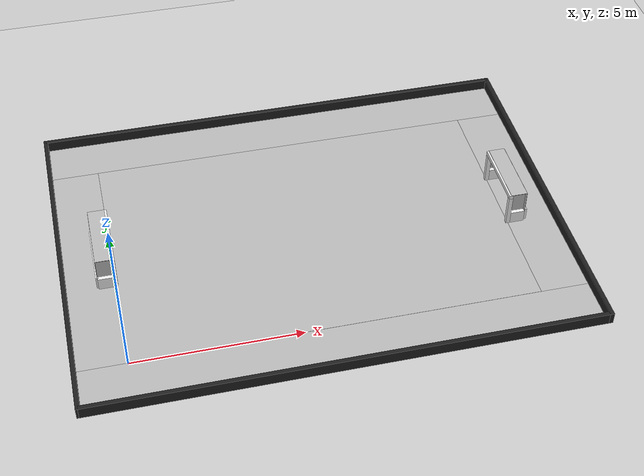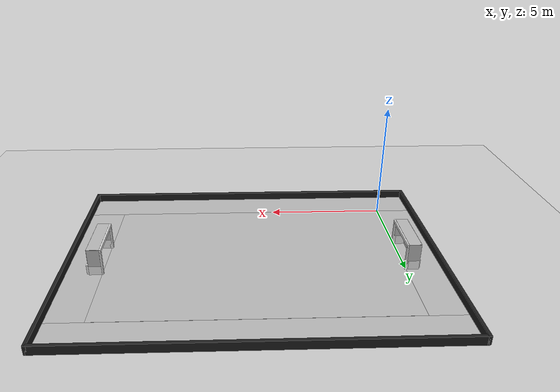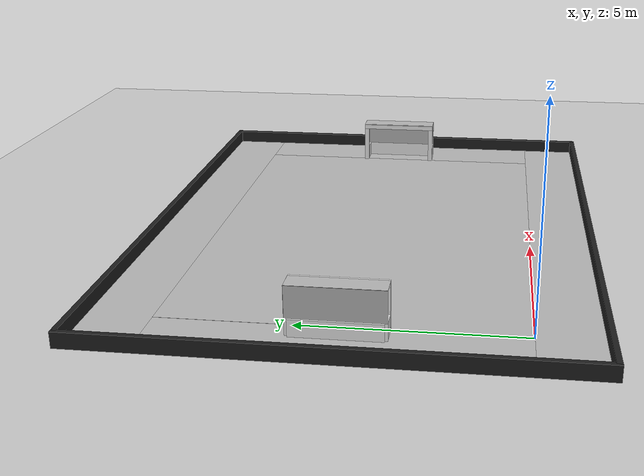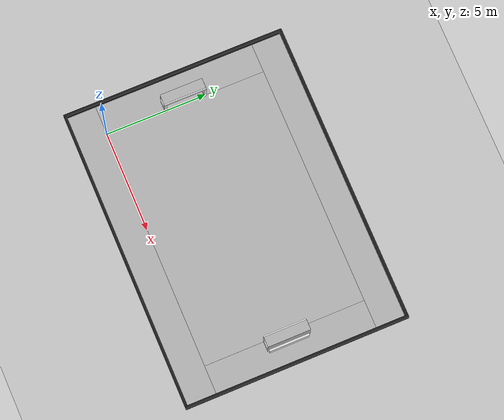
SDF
<?xml version="1.0"?>
<sdf version="1.4">
  <world name="KRI_Nasional">
    <!-- Scene -->
    <scene>
      <ambient>0.4 0.4 0.4 1</ambient>
      <background>0.7 0.7 0.7 1</background>
      <shadows>0</shadows>
    </scene>

    <!-- spherical_coordinates -->
    <spherical_coordinates>
      <surface_model>EARTH_WGS84</surface_model>
      <latitude_deg>0</latitude_deg>
      <longitude_deg>0</longitude_deg>
      <elevation>0</elevation>
      <heading_deg>0</heading_deg>
    </spherical_coordinates>

    <!-- gui -->
    <gui fullscreen='0'>
      <camera name='user_camera'>
        <pose>0 -16 10 0 0.53 1.57</pose>
        <view_controller>orbit</view_controller>
      </camera>
    </gui>

    <!-- Ground Plane -->
    <include>
      <uri>model://ground_plane</uri>
    </include>

    <!-- lighting -->
    <include>
      <uri>model://sun</uri>
    </include>

    <!-- physics -->
    <physics type="ode">
      <ode>
        <constraints>
          <contact_max_correcting_vel>0.1</contact_max_correcting_vel>
          <contact_surface_layer>0.0001</contact_surface_layer>
        </constraints>
      </ode>
      <max_step_size>0.004</max_step_size>
      <real_time_update_rate>100</real_time_update_rate>
      <gravity>0.0 0.0 -9.81</gravity>
    </physics>

    <!-- Lapangan Nasional -->
    <include>
      <uri>model://KRI_Nasional</uri>
    </include>

    <plugin name="referee" filename="libreferee.so" />

  </world>
</sdf>

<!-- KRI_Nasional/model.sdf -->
<sdf version="1.6">
  <model name="KRI">
    <static>true</static>

    <link name="chassis">
      <pose>6 4 0.01 0 0 0</pose>
      <collision name="collision">
        <geometry>
          <plane>
            <normal>0 0 1</normal>
            <size>12 8</size>
          </plane>
        </geometry>
        <surface>
          <friction>
            <ode>
              <mu>100</mu>
              <mu2>50</mu2>
            </ode>
          </friction>
        </surface>
      </collision>

      <visual name="carpet">

        <geometry>
          <plane>
            <normal>0 0 1</normal>
            <size>12 8</size>
          </plane>
        </geometry>
        <material>
          <script>
            <uri>model://KRI_Nasional/materials/scripts/</uri>
            <uri>model://KRI_Nasional/materials/textures/</uri>
            <name>KRI/Carpet</name>
          </script>
        </material>
      </visual>

      <visual name="base1">
        <pose>0 4.75 0 0 0 0</pose>
        <cast_shadows>false</cast_shadows>
        <geometry>
          <plane>
            <normal>0 0 1</normal>
            <size>15.0 1.5</size>
          </plane>
        </geometry>
        <material>
          <script>
            <uri>file://KRI_Nasional/materials/scripts/</uri>
            <uri>file://KRI_Nasional/materials/textures/</uri>
            <name>KRI/FieldBorder</name>
          </script>
        </material>
      </visual>

      <visual name="base2">
        <pose>0 -4.75 0 0 0 0</pose>
        <cast_shadows>true</cast_shadows>
        <geometry>
          <plane>
            <normal>0 0 1</normal>
            <size>15.0 1.5</size>
          </plane>
        </geometry>
        <material>
          <script>
            <uri>file://KRI_Nasional/materials/scripts/</uri>
            <uri>file://KRI_Nasional/materials/textures/</uri>
            <name>KRI/FieldBorder</name>
          </script>
        </material>
      </visual>

      <visual name="base3">
        <pose>6.75 0 0 0 0 0</pose>
        <cast_shadows>false</cast_shadows>
        <geometry>
          <plane>
            <normal>0 0 1</normal>
            <size>1.5 8.0</size>
          </plane>
        </geometry>
        <material>
          <script>
            <uri>file://KRI_Nasional/materials/scripts/</uri>
            <uri>file://KRI_Nasional/materials/textures/</uri>
            <name>KRI/FieldBorder</name>
          </script>
        </material>
      </visual>
      <visual name="base4">
        <pose>-6.75 0 0 0 0 0</pose>
        <cast_shadows>false</cast_shadows>
        <geometry>
          <plane>
            <normal>0 0 1</normal>
            <size>1.5 8.0</size>
          </plane>
        </geometry>
        <material>
          <script>
            <uri>file://KRI_Nasional/materials/scripts/</uri>
            <uri>file://KRI_Nasional/materials/textures/</uri>
            <name>KRI/FieldBorder</name>
          </script>
        </material>
      </visual>
    </link>

    <!--GAWAAAAAAAAAAAAAAAAAAAAAAAAAAAAAAAAAAAAAAAAAAAAAAAAAAAAAAAAAAAAAAAAAAAAAAAAAAAANG-->

    <link name="left_post">
      <pose>0 5 0.5 0 0 0</pose>
      <collision name="collision">
        <geometry>
          <box>
            <size>0.125 0.125 1.0</size>
          </box>
        </geometry>
      </collision>
      <visual name="visual">
        <geometry>
          <box>
            <size>0.125 0.125 1.0</size>
          </box>
        </geometry>
        <material>
          <script>
            <uri>file://media/materials/scripts/gazebo.material</uri>
            <name>Gazebo/White</name>
          </script>
        </material>
      </visual>
    </link>

    <link name="right_post">
      <pose>0 3 0.5 0 0 0</pose>
      <collision name="collision">
        <geometry>
          <box>
            <size>0.125 0.125 1.0</size>
          </box>
        </geometry>
      </collision>
      <visual name="visual">
        <geometry>
          <box>
            <size>0.125 0.125 1.0</size>
          </box>
        </geometry>
        <material>
          <script>
            <uri>file://media/materials/scripts/gazebo.material</uri>
            <name>Gazebo/White</name>
          </script>
        </material>
      </visual>
    </link>

    <link name="crossbar">
      <pose>0 4 1.0625 0 0 0</pose>
      <collision name="collision">
        <geometry>
          <box>
            <size>0.125 2.125 0.125</size>
          </box>
        </geometry>
      </collision>
      <visual name="visual">
        <geometry>
          <box>
            <size>0.125 2.125 0.125</size>
          </box>
        </geometry>
        <material>
          <script>
            <uri>file://media/materials/scripts/gazebo.material</uri>
            <name>Gazebo/White</name>
          </script>
        </material>
      </visual>
    </link>

    <link name="left_support_horiz_lower">
      <pose>-0.25 5 0.2 0 0 0</pose>
      <collision name="collision">
        <geometry>
          <box>
            <size>0.5 0.125 0.4</size>
          </box>
        </geometry>
      </collision>
      <visual name="visual">
        <geometry>
          <box>
            <size>0.5 0.125 0.4</size>
          </box>
        </geometry>
        <material>
          <script>
            <uri>file://media/materials/scripts/gazebo.material</uri>
            <name>Gazebo/White</name>
          </script>
        </material>
      </visual>
    </link>

    <link name="right_support_horiz_lower">
      <pose>-0.25 3 0.2 0 0 0</pose>
      <collision name="collision">
        <geometry>
          <box>
            <size>0.5 0.125 0.4</size>
          </box>
        </geometry>
      </collision>
      <visual name="visual">
        <geometry>
          <box>
            <size>0.5 0.125 0.4</size>
          </box>
        </geometry>
        <material>
          <script>
            <uri>file://media/materials/scripts/gazebo.material</uri>
            <name>Gazebo/White</name>
          </script>
        </material>
      </visual>
    </link>

    <link name="center_support_horiz_lower">
      <pose>-0.5 4 0.2 0 0 0</pose>
      <collision name="collision">
        <geometry>
          <box>
            <size>0.10 2 0.4</size>
          </box>
        </geometry>
      </collision>
      <visual name="visual">
        <geometry>
          <box>
            <size>0.10 2 0.4</size>
          </box>
        </geometry>
        <material>
          <script>
            <uri>file://media/materials/scripts/gazebo.material</uri>
            <name>Gazebo/White</name>
          </script>
        </material>
      </visual>
    </link>

    <link name="center_net">
      <pose>-0.5 4 0.7625 0 0 0</pose>
      <collision name="collision">
        <geometry>
          <box>
            <size>0.01 2.125 0.725</size>
          </box>
        </geometry>
      </collision>
      <visual name="visual">
        <geometry>
          <box>
            <size>0.01 2.125 0.725</size>
          </box>
        </geometry>
        <material>
          <script>
            <uri>file://KRI_Nasional/materials/scripts/</uri>
            <uri>file://KRI_Nasional/materials/textures/</uri>
            <name>KRI/Net</name>
          </script>
        </material>
      </visual>
    </link>

    <link name="left_net">
      <pose>-0.25 5.0625 0.7625 0 0 0</pose>
      <collision name="collision">
        <geometry>
          <box>
            <size>0.5 0.01 0.725</size>
          </box>
        </geometry>
      </collision>
      <visual name="visual">
        <geometry>
          <box>
            <size>0.5 0.01 0.725</size>
          </box>
        </geometry>
        <material>
          <script>
            <uri>file://KRI_Nasional/materials/scripts/</uri>
            <uri>file://KRI_Nasional/materials/textures/</uri>
            <name>KRI/Net</name>
          </script>
        </material>
      </visual>
    </link>

    <link name="right_net">
      <pose>-0.25 3.0625 0.7625 0 0 0</pose>
      <collision name="collision">
        <geometry>
          <box>
            <size>0.5 0.01 0.725</size>
          </box>
        </geometry>
      </collision>
      <visual name="visual">
        <geometry>
          <box>
            <size>0.5 0.01 0.725</size>
          </box>
        </geometry>
        <material>
          <script>
            <uri>file://KRI_Nasional/materials/scripts/</uri>
            <uri>file://KRI_Nasional/materials/textures/</uri>
            <name>KRI/Net</name>
          </script>
        </material>
      </visual>
    </link>

    <link name='upper_net'>
      <pose>-0.25 4 1.125 0 0 0</pose>
      <collision name='collision'>
        <geometry>
          <box>
            <size>0.5 2.125 0.01</size>
          </box>
        </geometry>
        <max_contacts>10</max_contacts>
      </collision>
      <visual name='visual'>
        <geometry>
          <box>
            <size>0.5 2.125 0.01</size>
          </box>
        </geometry>
        <material>
          <script>
            <uri>file://KRI_Nasional/materials/scripts/</uri>
            <uri>file://KRI_Nasional/materials/textures/</uri>
            <name>KRI/Net</name>
          </script>
        </material>
      </visual>
    </link>

    <!-- Right Post -->
    <link name="left_post_2">
      <pose>12 5 0.5 0 0 0</pose>
      <collision name="collision">
        <geometry>
          <box>
            <size>0.125 0.125 1.0</size>
          </box>
        </geometry>
      </collision>
      <visual name="visual">
        <geometry>
          <box>
            <size>0.125 0.125 1.0</size>
          </box>
        </geometry>
        <material>
          <script>
            <uri>file://media/materials/scripts/gazebo.material</uri>
            <name>Gazebo/White</name>
          </script>
        </material>
      </visual>
    </link>

    <link name="right_post_2">
      <pose>12 3 0.5 0 0 0</pose>
      <collision name="collision">
        <geometry>
          <box>
            <size>0.125 0.125 1.0</size>
          </box>
        </geometry>
      </collision>
      <visual name="visual">
        <geometry>
          <box>
            <size>0.125 0.125 1.0</size>
          </box>
        </geometry>
        <material>
          <script>
            <uri>file://media/materials/scripts/gazebo.material</uri>
            <name>Gazebo/White</name>
          </script>
        </material>
      </visual>
    </link>

    <link name="crossbar_2">
      <pose>12 4 1.0625 0 0 0</pose>
      <collision name="collision">
        <geometry>
          <box>
            <size>0.125 2.125 0.125</size>
          </box>
        </geometry>
      </collision>
      <visual name="visual">
        <geometry>
          <box>
            <size>0.125 2.125 0.125</size>
          </box>
        </geometry>
        <material>
          <script>
            <uri>file://media/materials/scripts/gazebo.material</uri>
            <name>Gazebo/White</name>
          </script>
        </material>
      </visual>
    </link>

    <link name="left_support_horiz_lower_2">
      <pose>12.25 5 0.2 0 0 0</pose>
      <collision name="collision">
        <geometry>
          <box>
            <size>0.5 0.125 0.4</size>
          </box>
        </geometry>
      </collision>
      <visual name="visual">
        <geometry>
          <box>
            <size>0.5 0.125 0.4</size>
          </box>
        </geometry>
        <material>
          <script>
            <uri>file://media/materials/scripts/gazebo.material</uri>
            <name>Gazebo/White</name>
          </script>
        </material>
      </visual>
    </link>

    <link name="right_support_horiz_lower_2">
      <pose>12.25 3 0.2 0 0 0</pose>
      <collision name="collision">
        <geometry>
          <box>
            <size>0.5 0.125 0.4</size>
          </box>
        </geometry>
      </collision>
      <visual name="visual">
        <geometry>
          <box>
            <size>0.5 0.125 0.4</size>
          </box>
        </geometry>
        <material>
          <script>
            <uri>file://media/materials/scripts/gazebo.material</uri>
            <name>Gazebo/White</name>
          </script>
        </material>
      </visual>
    </link>

    <link name="center_support_horiz_lower_2">
      <pose>12.55 4 0.2 0 0 0</pose>
      <collision name="collision">
        <geometry>
          <box>
            <size>0.10 2 0.4</size>
          </box>
        </geometry>
      </collision>
      <visual name="visual">
        <geometry>
          <box>
            <size>0.10 2 0.4</size>
          </box>
        </geometry>
        <material>
          <script>
            <uri>file://media/materials/scripts/gazebo.material</uri>
            <name>Gazebo/White</name>
          </script>
        </material>
      </visual>
    </link>

    <link name="center_net_2">
      <pose>12.5 4 0.7625 0 0 0</pose>
      <collision name="collision">
        <geometry>
          <box>
            <size>0.01 2.125 0.725</size>
          </box>
        </geometry>
      </collision>
      <visual name="visual">
        <geometry>
          <box>
            <size>0.01 2.125 0.725</size>
          </box>
        </geometry>
        <material>
          <script>
            <uri>file://KRI_Nasional/materials/scripts/</uri>
            <uri>file://KRI_Nasional/materials/textures/</uri>
            <name>KRI/Net</name>
          </script>
        </material>
      </visual>
    </link>

    <link name="left_net_2">
      <pose>12.25 5.0625 0.7625 0 0 0</pose>
      <collision name="collision">
        <geometry>
          <box>
            <size>0.5 0.01 0.725</size>
          </box>
        </geometry>
      </collision>
      <visual name="visual">
        <geometry>
          <box>
            <size>0.5 0.01 0.725</size>
          </box>
        </geometry>
        <material>
          <script>
            <uri>file://KRI_Nasional/materials/scripts/</uri>
            <uri>file://KRI_Nasional/materials/textures/</uri>
            <name>KRI/Net</name>
          </script>
        </material>
      </visual>
    </link>

    <link name="right_net_2">
      <pose>12.25 3.0625 0.7625 0 0 0</pose>
      <collision name="collision">
        <geometry>
          <box>
            <size>0.5 0.01 0.725</size>
          </box>
        </geometry>
      </collision>
      <visual name="visual">
        <geometry>
          <box>
            <size>0.5 0.01 0.725</size>
          </box>
        </geometry>
        <material>
          <script>
            <uri>file://KRI_Nasional/materials/scripts/</uri>
            <uri>file://KRI_Nasional/materials/textures/</uri>
            <name>KRI/Net</name>
          </script>
        </material>
      </visual>
    </link>

    <link name='upper_net_2'>
      <pose>12.25 4 1.125 0 0 0</pose>
      <collision name='collision'>
        <geometry>
          <box>
            <size>0.5 2.125 0.01</size>
          </box>
        </geometry>
        <max_contacts>10</max_contacts>
      </collision>
      <visual name='visual'>
        <geometry>
          <box>
            <size>0.5 2.125 0.01</size>
          </box>
        </geometry>
        <material>
          <script>
            <uri>file://KRI_Nasional/materials/scripts/</uri>
            <uri>file://KRI_Nasional/materials/textures/</uri>
            <name>KRI/Net</name>
          </script>
        </material>
      </visual>
    </link>

    <!--Black
    Border-->
    <link name="border_left_y">
      <pose>6 9.5 0 0 0 0</pose>
      <collision name="collision">
        <geometry>
          <box>
            <size>15 0.125 0.7</size>
          </box>
        </geometry>
      </collision>
      <visual name="visual">
        <geometry>
          <box>
            <size>15 0.125 0.7</size>
          </box>
        </geometry>
        <material>
          <script>
            <uri>file://media/materials/scripts/gazebo.material</uri>
            <name>Gazebo/Black</name>
          </script>
        </material>
      </visual>
    </link>

    <link name="border_right_y">
      <pose>6 -1.5 0 0 0 0</pose>
      <collision name="collision">
        <geometry>
          <box>
            <size>15 0.125 0.7</size>
          </box>
        </geometry>
      </collision>
      <visual name="visual">
        <geometry>
          <box>
            <size>15 0.125 0.7</size>
          </box>
        </geometry>
        <material>
          <script>
            <uri>file://media/materials/scripts/gazebo.material</uri>
            <name>Gazebo/Black</name>
          </script>
        </material>
      </visual>
    </link>

    <link name="border_left_x">
      <pose>-1.5 4 0 0 0 0</pose>
      <collision name="collision">
        <geometry>
          <box>
            <size>0.125 11.125 0.7</size>
          </box>
        </geometry>
      </collision>
      <visual name="visual">
        <geometry>
          <box>
            <size>0.125 11.125 0.7</size>
          </box>
        </geometry>
        <material>
          <script>
            <uri>file://media/materials/scripts/gazebo.material</uri>
            <name>Gazebo/Black</name>
          </script>
        </material>
      </visual>
    </link>

    <link name="border_right_x">
      <pose>13.5 4 0 0 0 0</pose>
      <collision name="collision">
        <geometry>
          <box>
            <size>0.125 11.125 0.7</size>
          </box>
        </geometry>
      </collision>
      <visual name="visual">
        <geometry>
          <box>
            <size>0.125 11.125 0.7</size>
          </box>
        </geometry>
        <material>
          <script>
            <uri>file://media/materials/scripts/gazebo.material</uri>
            <name>Gazebo/Black</name>
          </script>
        </material>
      </visual>
    </link>

    <!-- KAMERA -->
    <link name="kamera">
      <pose> 0 -11 12 0 0.9 1.568 </pose>
      <sensor name="camera" type="camera">
        <camera>
          <image>
            <width>1280</width>
            <height>720</height>
            <format>R8G8B8</format>
          </image>
          <near>0.55</near>
          <far>2.5</far>
          <horizontal_fov>1.05</horizontal_fov>
        </camera>

        <plugin name="camera_controller" filename="libgazebo_ros_camera.so">
          <alwaysOn>true</alwaysOn>
          <updateRate>50.0</updateRate>
          <cameraName>gazebo</cameraName>
          <imageTopicName>image_raw</imageTopicName>
          <cameraInfoTopicName>camera_info</cameraInfoTopicName>
          <frameName>camera</frameName>
          <hackBaseline>0.07</hackBaseline>
          <distortionK1>0.0</distortionK1>
          <distortionK2>0.0</distortionK2>
          <distortionK3>0.0</distortionK3>
          <distortionT1>0.0</distortionT1>
          <distortionT2>0.0</distortionT2>
        </plugin>
      </sensor>
    </link>

  </model>
</sdf>
